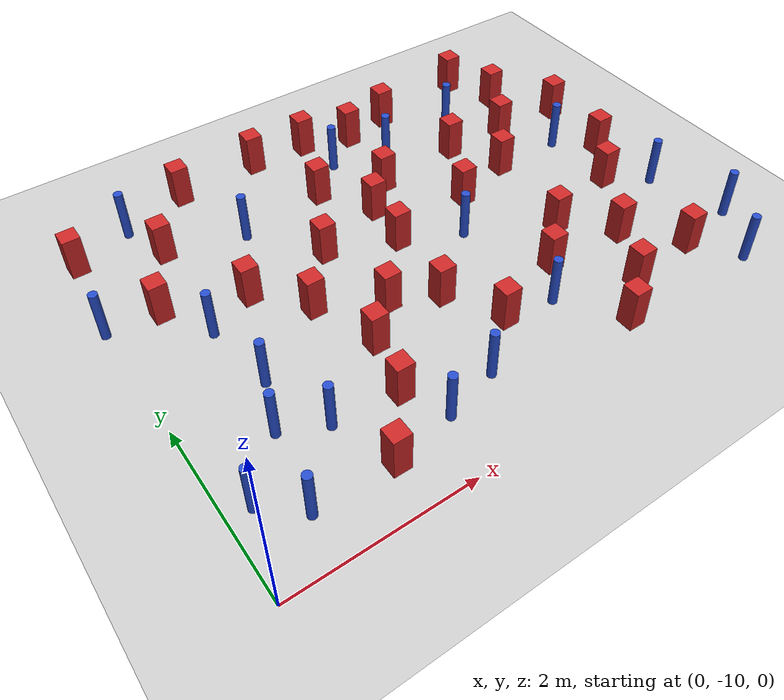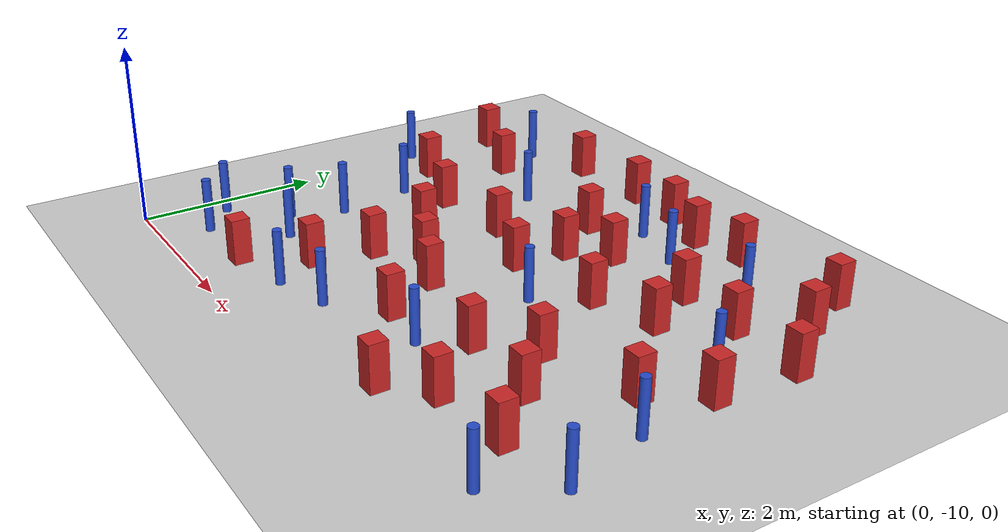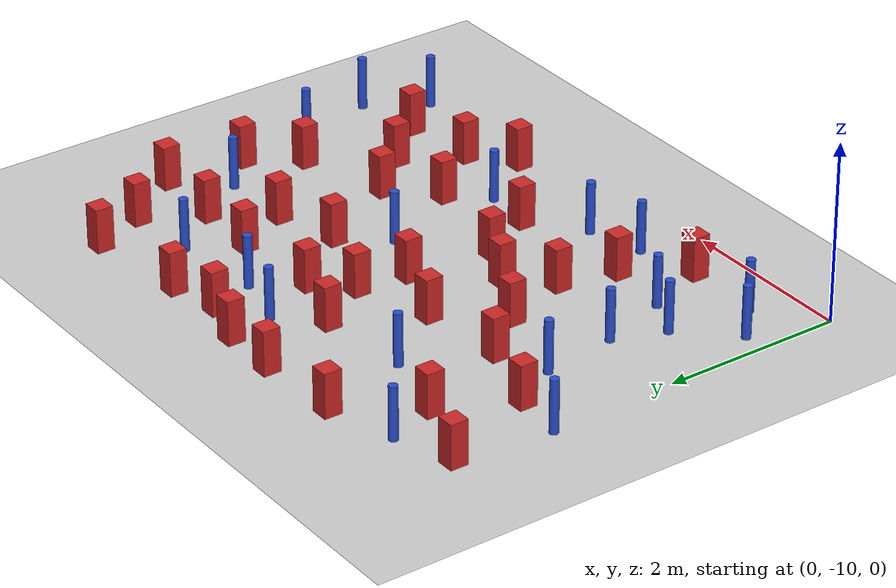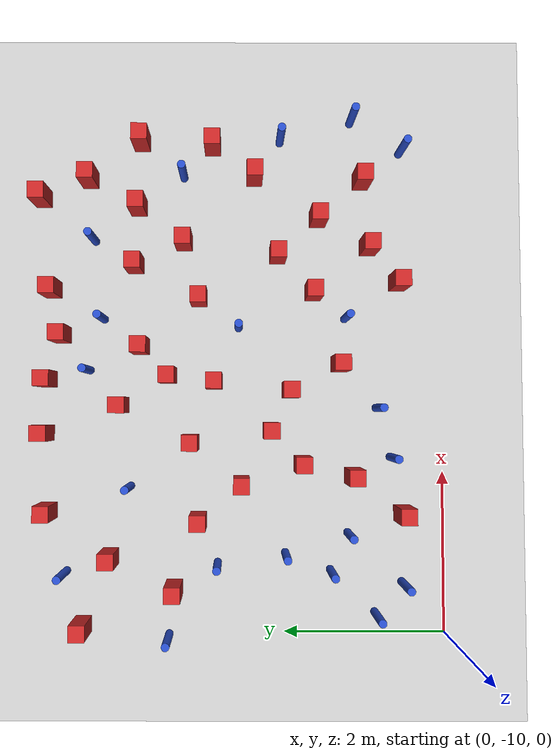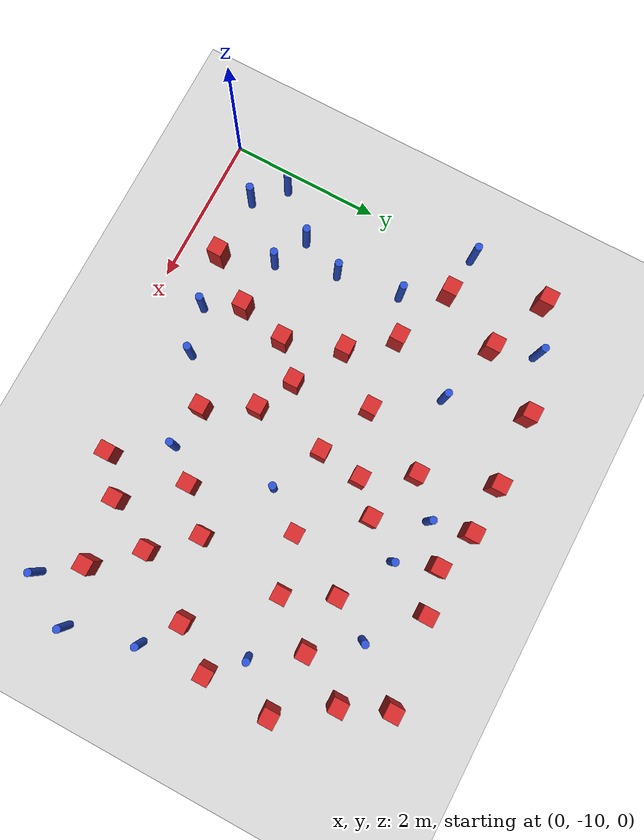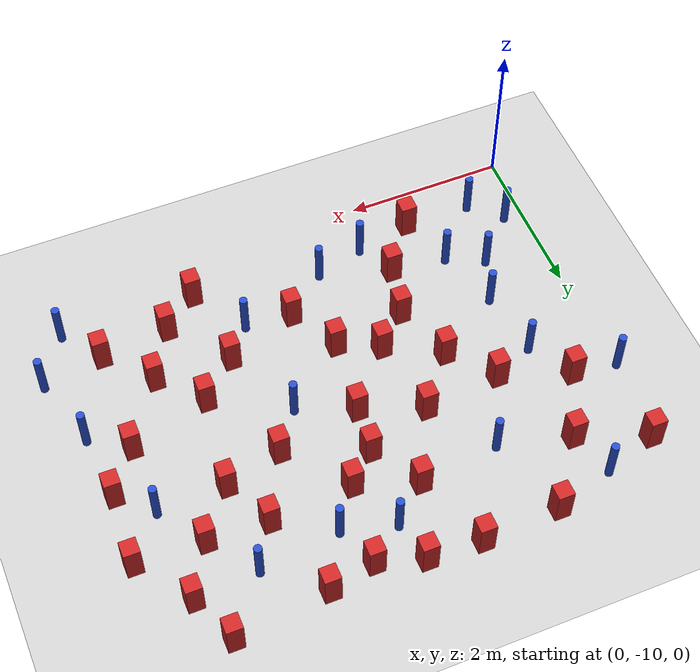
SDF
<sdf version="1.6">
 <world name="default">
  <model name="ground_plane">
   <static>1</static>
   <link name="link">
    <collision name="collision">
     <geometry><plane><normal>0 0 1</normal><size>100 100</size></plane></geometry>
     <surface><friction><ode><mu>100</mu><mu2>50</mu2></ode></friction></surface>
    </collision>
    <visual name="visual">
     <cast_shadows>0</cast_shadows>
     <geometry><plane><normal>0 0 1</normal><size>100 100</size></plane></geometry>
     <material>
      <ambient>1.0 1.0 1.0 1.0</ambient>
      <diffuse>0.8 0.8 0.8 1.0</diffuse>
      <specular>0.01 0.01 0.01 1.000000</specular>
     </material>
    </visual>
   </link>
  </model>
  <model name="square_post_obstacle4">
   <static>true</static>
   <pose>4.27000740854 -8.36256400304 -6.11067671241e-07 -5.50515727128e-06 -8.79689657224e-07 2.37013304536e-05</pose>
   <link name="link">
    <pose>0 0 0.25 0 -0 0</pose>
    <inertial>
     <mass>100</mass>
     <inertia>
      <ixx>0.166667</ixx>
      <ixy>0</ixy>
      <ixz>0</ixz>
      <iyy>0.166667</iyy>
      <iyz>0</iyz>
      <izz>0.166667</izz>
     </inertia>
    </inertial>
    <collision name="collision"><geometry><box><size>.2 .2 .5</size></box></geometry></collision>
    <visual name="visual">
     <geometry><box><size>.2 .2 .5</size></box></geometry>
     <material>
      <script><name>Gazebo/Red</name><uri>file://media/materials/scripts/gazebo.material</uri></script>
     </material>
    </visual>
   </link>
  </model>
  <model name="square_post_obstacle27">
   <static>true</static>
   <pose>4.91320004879 -6.72935652922 -6.11067671241e-07 -5.50515727128e-06 -8.79689657224e-07 2.37013304536e-05</pose>
   <link name="link">
    <pose>0 0 0.25 0 -0 0</pose>
    <inertial>
     <mass>100</mass>
     <inertia>
      <ixx>0.166667</ixx>
      <ixy>0</ixy>
      <ixz>0</ixz>
      <iyy>0.166667</iyy>
      <iyz>0</iyz>
      <izz>0.166667</izz>
     </inertia>
    </inertial>
    <collision name="collision"><geometry><box><size>.2 .2 .5</size></box></geometry></collision>
    <visual name="visual">
     <geometry><box><size>.2 .2 .5</size></box></geometry>
     <material>
      <script><name>Gazebo/Red</name><uri>file://media/materials/scripts/gazebo.material</uri></script>
     </material>
    </visual>
   </link>
  </model>
  <model name="pole_obstacle20">
   <static>true</static>
   <pose>6.22109271074 -7.94718420728 -9.47619616065e-06 5.49618799737e-07 2.36310414037e-07 -1.55090534814e-07</pose>
   <link name="link">
    <pose>0 0 0.3 0 -0 0</pose>
    <inertial>
     <mass>1</mass>
     <inertia><ixx>0.145833</ixx><ixy>0</ixy><ixz>0</ixz><iyy>0.145833</iyy><iyz>0</iyz><izz>0.125</izz></inertia>
    </inertial>
    <collision name="collision">
     <geometry><cylinder><radius>0.05</radius><length>.6</length></cylinder></geometry>
    </collision>
    <visual name="visual">
     <geometry><cylinder><radius>0.05</radius><length>.6</length></cylinder></geometry>
     <material>
      <script><name>Gazebo/Blue</name><uri>file://media/materials/scripts/gazebo.material</uri></script>
     </material>
    </visual>
   </link>
  </model>
  <model name="square_post_obstacle31">
   <static>true</static>
   <pose>3.16535665609 -5.01439034284 -6.11067671241e-07 -5.50515727128e-06 -8.79689657224e-07 2.37013304536e-05</pose>
   <link name="link">
    <pose>0 0 0.25 0 -0 0</pose>
    <inertial>
     <mass>100</mass>
     <inertia>
      <ixx>0.166667</ixx>
      <ixy>0</ixy>
      <ixz>0</ixz>
      <iyy>0.166667</iyy>
      <iyz>0</iyz>
      <izz>0.166667</izz>
     </inertia>
    </inertial>
    <collision name="collision"><geometry><box><size>.2 .2 .5</size></box></geometry></collision>
    <visual name="visual">
     <geometry><box><size>.2 .2 .5</size></box></geometry>
     <material>
      <script><name>Gazebo/Red</name><uri>file://media/materials/scripts/gazebo.material</uri></script>
     </material>
    </visual>
   </link>
  </model>
  <model name="pole_obstacle27">
   <static>true</static>
   <pose>0.25035474109 -9.12899410906 -9.47619616065e-06 5.49618799737e-07 2.36310414028e-07 -1.5509053482e-07</pose>
   <link name="link">
    <pose>0 0 0.3 0 -0 0</pose>
    <inertial>
     <mass>1</mass>
     <inertia><ixx>0.145833</ixx><ixy>0</ixy><ixz>0</ixz><iyy>0.145833</iyy><iyz>0</iyz><izz>0.125</izz></inertia>
    </inertial>
    <collision name="collision">
     <geometry><cylinder><radius>0.05</radius><length>.6</length></cylinder></geometry>
    </collision>
    <visual name="visual">
     <geometry><cylinder><radius>0.05</radius><length>.6</length></cylinder></geometry>
     <material>
      <script><name>Gazebo/Blue</name><uri>file://media/materials/scripts/gazebo.material</uri></script>
     </material>
    </visual>
   </link>
  </model>
  <model name="square_post_obstacle33">
   <static>true</static>
   <pose>1.84977558621 -7.45729103362 -6.11067671241e-07 -5.50515727128e-06 -8.79689657224e-07 2.37013304536e-05</pose>
   <link name="link">
    <pose>0 0 0.25 0 -0 0</pose>
    <inertial>
     <mass>100</mass>
     <inertia>
      <ixx>0.166667</ixx>
      <ixy>0</ixy>
      <ixz>0</ixz>
      <iyy>0.166667</iyy>
      <iyz>0</iyz>
      <izz>0.166667</izz>
     </inertia>
    </inertial>
    <collision name="collision"><geometry><box><size>.2 .2 .5</size></box></geometry></collision>
    <visual name="visual">
     <geometry><box><size>.2 .2 .5</size></box></geometry>
     <material>
      <script><name>Gazebo/Red</name><uri>file://media/materials/scripts/gazebo.material</uri></script>
     </material>
    </visual>
   </link>
  </model>
  <model name="square_post_obstacle34">
   <static>true</static>
   <pose>0.943805284244 -5.81739186659 -6.11067671241e-07 -5.50515727128e-06 -8.79689657224e-07 2.37013304536e-05</pose>
   <link name="link">
    <pose>0 0 0.25 0 -0 0</pose>
    <inertial>
     <mass>100</mass>
     <inertia>
      <ixx>0.166667</ixx>
      <ixy>0</ixy>
      <ixz>0</ixz>
      <iyy>0.166667</iyy>
      <iyz>0</iyz>
      <izz>0.166667</izz>
     </inertia>
    </inertial>
    <collision name="collision"><geometry><box><size>.2 .2 .5</size></box></geometry></collision>
    <visual name="visual">
     <geometry><box><size>.2 .2 .5</size></box></geometry>
     <material>
      <script><name>Gazebo/Red</name><uri>file://media/materials/scripts/gazebo.material</uri></script>
     </material>
    </visual>
   </link>
  </model>
  <model name="pole_obstacle37">
   <static>true</static>
   <pose>6.07519219155 -9.47970827635 -9.47619616065e-06 5.49618799737e-07 2.36310414065e-07 -1.55090534796e-07</pose>
   <link name="link">
    <pose>0 0 0.3 0 -0 0</pose>
    <inertial>
     <mass>1</mass>
     <inertia><ixx>0.145833</ixx><ixy>0</ixy><ixz>0</ixz><iyy>0.145833</iyy><iyz>0</iyz><izz>0.125</izz></inertia>
    </inertial>
    <collision name="collision">
     <geometry><cylinder><radius>0.05</radius><length>.6</length></cylinder></geometry>
    </collision>
    <visual name="visual">
     <geometry><cylinder><radius>0.05</radius><length>.6</length></cylinder></geometry>
     <material>
      <script><name>Gazebo/Blue</name><uri>file://media/materials/scripts/gazebo.material</uri></script>
     </material>
    </visual>
   </link>
  </model>
  <model name="square_post_obstacle38">
   <static>true</static>
   <pose>4.85000489357 -9.0650101034 -6.11067671241e-07 -5.50515727128e-06 -8.79689657224e-07 2.37013304536e-05</pose>
   <link name="link">
    <pose>0 0 0.25 0 -0 0</pose>
    <inertial>
     <mass>100</mass>
     <inertia>
      <ixx>0.166667</ixx>
      <ixy>0</ixy>
      <ixz>0</ixz>
      <iyy>0.166667</iyy>
      <iyz>0</iyz>
      <izz>0.166667</izz>
     </inertia>
    </inertial>
    <collision name="collision"><geometry><box><size>.2 .2 .5</size></box></geometry></collision>
    <visual name="visual">
     <geometry><box><size>.2 .2 .5</size></box></geometry>
     <material>
      <script><name>Gazebo/Red</name><uri>file://media/materials/scripts/gazebo.material</uri></script>
     </material>
    </visual>
   </link>
  </model>
  <model name="pole_obstacle42">
   <static>true</static>
   <pose>2.80531572379 -9.16412927902 -9.4761961606e-06 5.49618799729e-07 2.36310414e-07 -1.55090534824e-07</pose>
   <link name="link">
    <pose>0 0 0.3 0 -0 0</pose>
    <inertial>
     <mass>1</mass>
     <inertia><ixx>0.145833</ixx><ixy>0</ixy><ixz>0</ixz><iyy>0.145833</iyy><iyz>0</iyz><izz>0.125</izz></inertia>
    </inertial>
    <collision name="collision">
     <geometry><cylinder><radius>0.05</radius><length>.6</length></cylinder></geometry>
    </collision>
    <visual name="visual">
     <geometry><cylinder><radius>0.05</radius><length>.6</length></cylinder></geometry>
     <material>
      <script><name>Gazebo/Blue</name><uri>file://media/materials/scripts/gazebo.material</uri></script>
     </material>
    </visual>
   </link>
  </model>
  <model name="square_post_obstacle41">
   <static>true</static>
   <pose>3.35836096878 -8.69615812365 -6.11067671241e-07 -5.50515727128e-06 -8.79689657224e-07 2.37013304536e-05</pose>
   <link name="link">
    <pose>0 0 0.25 0 -0 0</pose>
    <inertial>
     <mass>100</mass>
     <inertia>
      <ixx>0.166667</ixx>
      <ixy>0</ixy>
      <ixz>0</ixz>
      <iyy>0.166667</iyy>
      <iyz>0</iyz>
      <izz>0.166667</izz>
     </inertia>
    </inertial>
    <collision name="collision"><geometry><box><size>.2 .2 .5</size></box></geometry></collision>
    <visual name="visual">
     <geometry><box><size>.2 .2 .5</size></box></geometry>
     <material>
      <script><name>Gazebo/Red</name><uri>file://media/materials/scripts/gazebo.material</uri></script>
     </material>
    </visual>
   </link>
  </model>
  <model name="square_post_obstacle45">
   <static>true</static>
   <pose>5.2152647757 -8.42399755399 -6.11067671241e-07 -5.50515727128e-06 -8.79689657224e-07 2.37013304536e-05</pose>
   <link name="link">
    <pose>0 0 0.25 0 -0 0</pose>
    <inertial>
     <mass>100</mass>
     <inertia>
      <ixx>0.166667</ixx>
      <ixy>0</ixy>
      <ixz>0</ixz>
      <iyy>0.166667</iyy>
      <iyz>0</iyz>
      <izz>0.166667</izz>
     </inertia>
    </inertial>
    <collision name="collision"><geometry><box><size>.2 .2 .5</size></box></geometry></collision>
    <visual name="visual">
     <geometry><box><size>.2 .2 .5</size></box></geometry>
     <material>
      <script><name>Gazebo/Red</name><uri>file://media/materials/scripts/gazebo.material</uri></script>
     </material>
    </visual>
   </link>
  </model>
  <model name="square_post_obstacle53">
   <static>true</static>
   <pose>1.51478234828 -5.03389385003 -6.11067671241e-07 -5.50515727128e-06 -8.79689657224e-07 2.37013304536e-05</pose>
   <link name="link">
    <pose>0 0 0.25 0 -0 0</pose>
    <inertial>
     <mass>100</mass>
     <inertia>
      <ixx>0.166667</ixx>
      <ixy>0</ixy>
      <ixz>0</ixz>
      <iyy>0.166667</iyy>
      <iyz>0</iyz>
      <izz>0.166667</izz>
     </inertia>
    </inertial>
    <collision name="collision"><geometry><box><size>.2 .2 .5</size></box></geometry></collision>
    <visual name="visual">
     <geometry><box><size>.2 .2 .5</size></box></geometry>
     <material>
      <script><name>Gazebo/Red</name><uri>file://media/materials/scripts/gazebo.material</uri></script>
     </material>
    </visual>
   </link>
  </model>
  <model name="square_post_obstacle54">
   <static>true</static>
   <pose>3.72689772404 -5.1895882642 -6.11067671241e-07 -5.50515727128e-06 -8.79689657224e-07 2.37013304536e-05</pose>
   <link name="link">
    <pose>0 0 0.25 0 -0 0</pose>
    <inertial>
     <mass>100</mass>
     <inertia>
      <ixx>0.166667</ixx>
      <ixy>0</ixy>
      <ixz>0</ixz>
      <iyy>0.166667</iyy>
      <iyz>0</iyz>
      <izz>0.166667</izz>
     </inertia>
    </inertial>
    <collision name="collision"><geometry><box><size>.2 .2 .5</size></box></geometry></collision>
    <visual name="visual">
     <geometry><box><size>.2 .2 .5</size></box></geometry>
     <material>
      <script><name>Gazebo/Red</name><uri>file://media/materials/scripts/gazebo.material</uri></script>
     </material>
    </visual>
   </link>
  </model>
  <model name="square_post_obstacle64">
   <static>true</static>
   <pose>5.47980102658 -4.9244858848 -6.11067671241e-07 -5.50515727128e-06 -8.79689657224e-07 2.37013304536e-05</pose>
   <link name="link">
    <pose>0 0 0.25 0 -0 0</pose>
    <inertial>
     <mass>100</mass>
     <inertia>
      <ixx>0.166667</ixx>
      <ixy>0</ixy>
      <ixz>0</ixz>
      <iyy>0.166667</iyy>
      <iyz>0</iyz>
      <izz>0.166667</izz>
     </inertia>
    </inertial>
    <collision name="collision"><geometry><box><size>.2 .2 .5</size></box></geometry></collision>
    <visual name="visual">
     <geometry><box><size>.2 .2 .5</size></box></geometry>
     <material>
      <script><name>Gazebo/Red</name><uri>file://media/materials/scripts/gazebo.material</uri></script>
     </material>
    </visual>
   </link>
  </model>
  <model name="square_post_obstacle66">
   <static>true</static>
   <pose>6.2099515593 -6.18497240239 -6.11067671241e-07 -5.50515727128e-06 -8.79689657224e-07 2.37013304536e-05</pose>
   <link name="link">
    <pose>0 0 0.25 0 -0 0</pose>
    <inertial>
     <mass>100</mass>
     <inertia>
      <ixx>0.166667</ixx>
      <ixy>0</ixy>
      <ixz>0</ixz>
      <iyy>0.166667</iyy>
      <iyz>0</iyz>
      <izz>0.166667</izz>
     </inertia>
    </inertial>
    <collision name="collision"><geometry><box><size>.2 .2 .5</size></box></geometry></collision>
    <visual name="visual">
     <geometry><box><size>.2 .2 .5</size></box></geometry>
     <material>
      <script><name>Gazebo/Red</name><uri>file://media/materials/scripts/gazebo.material</uri></script>
     </material>
    </visual>
   </link>
  </model>
  <model name="square_post_obstacle76">
   <static>true</static>
   <pose>3.13929766822 -7.11470816237 -6.11067671241e-07 -5.50515727128e-06 -8.79689657224e-07 2.37013304536e-05</pose>
   <link name="link">
    <pose>0 0 0.25 0 -0 0</pose>
    <inertial>
     <mass>100</mass>
     <inertia>
      <ixx>0.166667</ixx>
      <ixy>0</ixy>
      <ixz>0</ixz>
      <iyy>0.166667</iyy>
      <iyz>0</iyz>
      <izz>0.166667</izz>
     </inertia>
    </inertial>
    <collision name="collision"><geometry><box><size>.2 .2 .5</size></box></geometry></collision>
    <visual name="visual">
     <geometry><box><size>.2 .2 .5</size></box></geometry>
     <material>
      <script><name>Gazebo/Red</name><uri>file://media/materials/scripts/gazebo.material</uri></script>
     </material>
    </visual>
   </link>
  </model>
  <model name="pole_obstacle77">
   <static>true</static>
   <pose>3.81965279571 -7.42173797275 -9.47619616065e-06 5.49618799738e-07 2.3631041406e-07 -1.55090534801e-07</pose>
   <link name="link">
    <pose>0 0 0.3 0 -0 0</pose>
    <inertial>
     <mass>1</mass>
     <inertia><ixx>0.145833</ixx><ixy>0</ixy><ixz>0</ixz><iyy>0.145833</iyy><iyz>0</iyz><izz>0.125</izz></inertia>
    </inertial>
    <collision name="collision">
     <geometry><cylinder><radius>0.05</radius><length>.6</length></cylinder></geometry>
    </collision>
    <visual name="visual">
     <geometry><cylinder><radius>0.05</radius><length>.6</length></cylinder></geometry>
     <material>
      <script><name>Gazebo/Blue</name><uri>file://media/materials/scripts/gazebo.material</uri></script>
     </material>
    </visual>
   </link>
  </model>
  <model name="pole_obstacle81">
   <static>true</static>
   <pose>0.775164199899 -8.57461643668 -9.47619616065e-06 5.49618799737e-07 2.36310414038e-07 -1.55090534813e-07</pose>
   <link name="link">
    <pose>0 0 0.3 0 -0 0</pose>
    <inertial>
     <mass>1</mass>
     <inertia><ixx>0.145833</ixx><ixy>0</ixy><ixz>0</ixz><iyy>0.145833</iyy><iyz>0</iyz><izz>0.125</izz></inertia>
    </inertial>
    <collision name="collision">
     <geometry><cylinder><radius>0.05</radius><length>.6</length></cylinder></geometry>
    </collision>
    <visual name="visual">
     <geometry><cylinder><radius>0.05</radius><length>.6</length></cylinder></geometry>
     <material>
      <script><name>Gazebo/Blue</name><uri>file://media/materials/scripts/gazebo.material</uri></script>
     </material>
    </visual>
   </link>
  </model>
  <model name="pole_obstacle91">
   <static>true</static>
   <pose>-0.0262227456353 -6.55758067548 -9.47619616065e-06 5.49618799737e-07 2.36310414067e-07 -1.55090534797e-07</pose>
   <link name="link">
    <pose>0 0 0.3 0 -0 0</pose>
    <inertial>
     <mass>1</mass>
     <inertia><ixx>0.145833</ixx><ixy>0</ixy><ixz>0</ixz><iyy>0.145833</iyy><iyz>0</iyz><izz>0.125</izz></inertia>
    </inertial>
    <collision name="collision">
     <geometry><cylinder><radius>0.05</radius><length>.6</length></cylinder></geometry>
    </collision>
    <visual name="visual">
     <geometry><cylinder><radius>0.05</radius><length>.6</length></cylinder></geometry>
     <material>
      <script><name>Gazebo/Blue</name><uri>file://media/materials/scripts/gazebo.material</uri></script>
     </material>
    </visual>
   </link>
  </model>
  <model name="square_post_obstacle83">
   <static>true</static>
   <pose>1.48588975882 -9.47851932892 -6.11067671241e-07 -5.50515727128e-06 -8.79689657224e-07 2.37013304536e-05</pose>
   <link name="link">
    <pose>0 0 0.25 0 -0 0</pose>
    <inertial>
     <mass>100</mass>
     <inertia>
      <ixx>0.166667</ixx>
      <ixy>0</ixy>
      <ixz>0</ixz>
      <iyy>0.166667</iyy>
      <iyz>0</iyz>
      <izz>0.166667</izz>
     </inertia>
    </inertial>
    <collision name="collision"><geometry><box><size>.2 .2 .5</size></box></geometry></collision>
    <visual name="visual">
     <geometry><box><size>.2 .2 .5</size></box></geometry>
     <material>
      <script><name>Gazebo/Red</name><uri>file://media/materials/scripts/gazebo.material</uri></script>
     </material>
    </visual>
   </link>
  </model>
  <model name="pole_obstacle95">
   <static>true</static>
   <pose>1.23606740199 -8.79605750148 -9.47619616065e-06 5.49618799737e-07 2.36310414046e-07 -1.55090534809e-07</pose>
   <link name="link">
    <pose>0 0 0.3 0 -0 0</pose>
    <inertial>
     <mass>1</mass>
     <inertia><ixx>0.145833</ixx><ixy>0</ixy><ixz>0</ixz><iyy>0.145833</iyy><iyz>0</iyz><izz>0.125</izz></inertia>
    </inertial>
    <collision name="collision">
     <geometry><cylinder><radius>0.05</radius><length>.6</length></cylinder></geometry>
    </collision>
    <visual name="visual">
     <geometry><cylinder><radius>0.05</radius><length>.6</length></cylinder></geometry>
     <material>
      <script><name>Gazebo/Blue</name><uri>file://media/materials/scripts/gazebo.material</uri></script>
     </material>
    </visual>
   </link>
  </model>
  <model name="square_post_obstacle84">
   <static>true</static>
   <pose>2.10705294698 -8.21892633521 -6.11067671241e-07 -5.50515727128e-06 -8.79689657224e-07 2.37013304536e-05</pose>
   <link name="link">
    <pose>0 0 0.25 0 -0 0</pose>
    <inertial>
     <mass>100</mass>
     <inertia>
      <ixx>0.166667</ixx>
      <ixy>0</ixy>
      <ixz>0</ixz>
      <iyy>0.166667</iyy>
      <iyz>0</iyz>
      <izz>0.166667</izz>
     </inertia>
    </inertial>
    <collision name="collision"><geometry><box><size>.2 .2 .5</size></box></geometry></collision>
    <visual name="visual">
     <geometry><box><size>.2 .2 .5</size></box></geometry>
     <material>
      <script><name>Gazebo/Red</name><uri>file://media/materials/scripts/gazebo.material</uri></script>
     </material>
    </visual>
   </link>
  </model>
  <model name="square_post_obstacle89">
   <static>true</static>
   <pose>2.37349055397 -6.82256334408 -6.11067671241e-07 -5.50515727128e-06 -8.79689657224e-07 2.37013304536e-05</pose>
   <link name="link">
    <pose>0 0 0.25 0 -0 0</pose>
    <inertial>
     <mass>100</mass>
     <inertia>
      <ixx>0.166667</ixx>
      <ixy>0</ixy>
      <ixz>0</ixz>
      <iyy>0.166667</iyy>
      <iyz>0</iyz>
      <izz>0.166667</izz>
     </inertia>
    </inertial>
    <collision name="collision"><geometry><box><size>.2 .2 .5</size></box></geometry></collision>
    <visual name="visual">
     <geometry><box><size>.2 .2 .5</size></box></geometry>
     <material>
      <script><name>Gazebo/Red</name><uri>file://media/materials/scripts/gazebo.material</uri></script>
     </material>
    </visual>
   </link>
  </model>
  <model name="pole_obstacle110">
   <static>true</static>
   <pose>0.62400176185 -9.47337553034 -9.47619616065e-06 5.49618799737e-07 2.36310414038e-07 -1.55090534813e-07</pose>
   <link name="link">
    <pose>0 0 0.3 0 -0 0</pose>
    <inertial>
     <mass>1</mass>
     <inertia><ixx>0.145833</ixx><ixy>0</ixy><ixz>0</ixz><iyy>0.145833</iyy><iyz>0</iyz><izz>0.125</izz></inertia>
    </inertial>
    <collision name="collision">
     <geometry><cylinder><radius>0.05</radius><length>.6</length></cylinder></geometry>
    </collision>
    <visual name="visual">
     <geometry><cylinder><radius>0.05</radius><length>.6</length></cylinder></geometry>
     <material>
      <script><name>Gazebo/Blue</name><uri>file://media/materials/scripts/gazebo.material</uri></script>
     </material>
    </visual>
   </link>
  </model>
  <model name="pole_obstacle111">
   <static>true</static>
   <pose>2.18609226781 -9.33753441363 -9.4761961606e-06 5.49618799729e-07 2.36310414e-07 -1.55090534824e-07</pose>
   <link name="link">
    <pose>0 0 0.3 0 -0 0</pose>
    <inertial>
     <mass>1</mass>
     <inertia><ixx>0.145833</ixx><ixy>0</ixy><ixz>0</ixz><iyy>0.145833</iyy><iyz>0</iyz><izz>0.125</izz></inertia>
    </inertial>
    <collision name="collision">
     <geometry><cylinder><radius>0.05</radius><length>.6</length></cylinder></geometry>
    </collision>
    <visual name="visual">
     <geometry><cylinder><radius>0.05</radius><length>.6</length></cylinder></geometry>
     <material>
      <script><name>Gazebo/Blue</name><uri>file://media/materials/scripts/gazebo.material</uri></script>
     </material>
    </visual>
   </link>
  </model>
  <model name="pole_obstacle112">
   <static>true</static>
   <pose>5.76023879678 -6.72163351184 -9.47619616065e-06 5.49618799737e-07 2.36310414037e-07 -1.55090534814e-07</pose>
   <link name="link">
    <pose>0 0 0.3 0 -0 0</pose>
    <inertial>
     <mass>1</mass>
     <inertia><ixx>0.145833</ixx><ixy>0</ixy><ixz>0</ixz><iyy>0.145833</iyy><iyz>0</iyz><izz>0.125</izz></inertia>
    </inertial>
    <collision name="collision">
     <geometry><cylinder><radius>0.05</radius><length>.6</length></cylinder></geometry>
    </collision>
    <visual name="visual">
     <geometry><cylinder><radius>0.05</radius><length>.6</length></cylinder></geometry>
     <material>
      <script><name>Gazebo/Blue</name><uri>file://media/materials/scripts/gazebo.material</uri></script>
     </material>
    </visual>
   </link>
  </model>
  <model name="square_post_obstacle99">
   <static>true</static>
   <pose>3.02630135185 -8.07060837532 -6.11067671241e-07 -5.50515727128e-06 -8.79689657224e-07 2.37013304536e-05</pose>
   <link name="link">
    <pose>0 0 0.25 0 -0 0</pose>
    <inertial>
     <mass>100</mass>
     <inertia>
      <ixx>0.166667</ixx>
      <ixy>0</ixy>
      <ixz>0</ixz>
      <iyy>0.166667</iyy>
      <iyz>0</iyz>
      <izz>0.166667</izz>
     </inertia>
    </inertial>
    <collision name="collision"><geometry><box><size>.2 .2 .5</size></box></geometry></collision>
    <visual name="visual">
     <geometry><box><size>.2 .2 .5</size></box></geometry>
     <material>
      <script><name>Gazebo/Red</name><uri>file://media/materials/scripts/gazebo.material</uri></script>
     </material>
    </visual>
   </link>
  </model>
  <model name="square_post_obstacle103">
   <static>true</static>
   <pose>4.30325117876 -5.06579845227 -6.11067671241e-07 -5.50515727128e-06 -8.79689657224e-07 2.37013304536e-05</pose>
   <link name="link">
    <pose>0 0 0.25 0 -0 0</pose>
    <inertial>
     <mass>100</mass>
     <inertia>
      <ixx>0.166667</ixx>
      <ixy>0</ixy>
      <ixz>0</ixz>
      <iyy>0.166667</iyy>
      <iyz>0</iyz>
      <izz>0.166667</izz>
     </inertia>
    </inertial>
    <collision name="collision"><geometry><box><size>.2 .2 .5</size></box></geometry></collision>
    <visual name="visual">
     <geometry><box><size>.2 .2 .5</size></box></geometry>
     <material>
      <script><name>Gazebo/Red</name><uri>file://media/materials/scripts/gazebo.material</uri></script>
     </material>
    </visual>
   </link>
  </model>
  <model name="square_post_obstacle106">
   <static>true</static>
   <pose>3.57953802652 -6.18852947052 -6.11067671241e-07 -5.50515727128e-06 -8.79689657224e-07 2.37013304536e-05</pose>
   <link name="link">
    <pose>0 0 0.25 0 -0 0</pose>
    <inertial>
     <mass>100</mass>
     <inertia>
      <ixx>0.166667</ixx>
      <ixy>0</ixy>
      <ixz>0</ixz>
      <iyy>0.166667</iyy>
      <iyz>0</iyz>
      <izz>0.166667</izz>
     </inertia>
    </inertial>
    <collision name="collision"><geometry><box><size>.2 .2 .5</size></box></geometry></collision>
    <visual name="visual">
     <geometry><box><size>.2 .2 .5</size></box></geometry>
     <material>
      <script><name>Gazebo/Red</name><uri>file://media/materials/scripts/gazebo.material</uri></script>
     </material>
    </visual>
   </link>
  </model>
  <model name="pole_obstacle124">
   <static>true</static>
   <pose>0.755564824645 -5.26332262702 -9.47619616065e-06 5.49618799737e-07 2.36310414065e-07 -1.55090534796e-07</pose>
   <link name="link">
    <pose>0 0 0.3 0 -0 0</pose>
    <inertial>
     <mass>1</mass>
     <inertia><ixx>0.145833</ixx><ixy>0</ixy><ixz>0</ixz><iyy>0.145833</iyy><iyz>0</iyz><izz>0.125</izz></inertia>
    </inertial>
    <collision name="collision">
     <geometry><cylinder><radius>0.05</radius><length>.6</length></cylinder></geometry>
    </collision>
    <visual name="visual">
     <geometry><cylinder><radius>0.05</radius><length>.6</length></cylinder></geometry>
     <material>
      <script><name>Gazebo/Blue</name><uri>file://media/materials/scripts/gazebo.material</uri></script>
     </material>
    </visual>
   </link>
  </model>
  <model name="pole_obstacle128">
   <static>true</static>
   <pose>4.93428116564 -5.59172526571 -9.47619616065e-06 5.49618799737e-07 2.36310414037e-07 -1.55090534814e-07</pose>
   <link name="link">
    <pose>0 0 0.3 0 -0 0</pose>
    <inertial>
     <mass>1</mass>
     <inertia><ixx>0.145833</ixx><ixy>0</ixy><ixz>0</ixz><iyy>0.145833</iyy><iyz>0</iyz><izz>0.125</izz></inertia>
    </inertial>
    <collision name="collision">
     <geometry><cylinder><radius>0.05</radius><length>.6</length></cylinder></geometry>
    </collision>
    <visual name="visual">
     <geometry><cylinder><radius>0.05</radius><length>.6</length></cylinder></geometry>
     <material>
      <script><name>Gazebo/Blue</name><uri>file://media/materials/scripts/gazebo.material</uri></script>
     </material>
    </visual>
   </link>
  </model>
  <model name="pole_obstacle137">
   <static>true</static>
   <pose>3.93063954701 -5.71215442817 -9.47619616065e-06 5.49618799738e-07 2.3631041406e-07 -1.55090534801e-07</pose>
   <link name="link">
    <pose>0 0 0.3 0 -0 0</pose>
    <inertial>
     <mass>1</mass>
     <inertia><ixx>0.145833</ixx><ixy>0</ixy><ixz>0</ixz><iyy>0.145833</iyy><iyz>0</iyz><izz>0.125</izz></inertia>
    </inertial>
    <collision name="collision">
     <geometry><cylinder><radius>0.05</radius><length>.6</length></cylinder></geometry>
    </collision>
    <visual name="visual">
     <geometry><cylinder><radius>0.05</radius><length>.6</length></cylinder></geometry>
     <material>
      <script><name>Gazebo/Blue</name><uri>file://media/materials/scripts/gazebo.material</uri></script>
     </material>
    </visual>
   </link>
  </model>
  <model name="square_post_obstacle130">
   <static>true</static>
   <pose>2.52095262187 -7.8295954439 -6.11067671241e-07 -5.50515727128e-06 -8.79689657224e-07 2.37013304536e-05</pose>
   <link name="link">
    <pose>0 0 0.25 0 -0 0</pose>
    <inertial>
     <mass>100</mass>
     <inertia>
      <ixx>0.166667</ixx>
      <ixy>0</ixy>
      <ixz>0</ixz>
      <iyy>0.166667</iyy>
      <iyz>0</iyz>
      <izz>0.166667</izz>
     </inertia>
    </inertial>
    <collision name="collision"><geometry><box><size>.2 .2 .5</size></box></geometry></collision>
    <visual name="visual">
     <geometry><box><size>.2 .2 .5</size></box></geometry>
     <material>
      <script><name>Gazebo/Red</name><uri>file://media/materials/scripts/gazebo.material</uri></script>
     </material>
    </visual>
   </link>
  </model>
  <model name="pole_obstacle146">
   <static>true</static>
   <pose>1.81649140983 -6.06243674188 -9.47619616065e-06 5.49618799737e-07 2.36310414061e-07 -1.550905348e-07</pose>
   <link name="link">
    <pose>0 0 0.3 0 -0 0</pose>
    <inertial>
     <mass>1</mass>
     <inertia><ixx>0.145833</ixx><ixy>0</ixy><ixz>0</ixz><iyy>0.145833</iyy><iyz>0</iyz><izz>0.125</izz></inertia>
    </inertial>
    <collision name="collision">
     <geometry><cylinder><radius>0.05</radius><length>.6</length></cylinder></geometry>
    </collision>
    <visual name="visual">
     <geometry><cylinder><radius>0.05</radius><length>.6</length></cylinder></geometry>
     <material>
      <script><name>Gazebo/Blue</name><uri>file://media/materials/scripts/gazebo.material</uri></script>
     </material>
    </visual>
   </link>
  </model>
  <model name="square_post_obstacle138">
   <static>true</static>
   <pose>0.096073461063 -5.48213786451 -6.11067671241e-07 -5.50515727128e-06 -8.79689657224e-07 2.37013304536e-05</pose>
   <link name="link">
    <pose>0 0 0.25 0 -0 0</pose>
    <inertial>
     <mass>100</mass>
     <inertia>
      <ixx>0.166667</ixx>
      <ixy>0</ixy>
      <ixz>0</ixz>
      <iyy>0.166667</iyy>
      <iyz>0</iyz>
      <izz>0.166667</izz>
     </inertia>
    </inertial>
    <collision name="collision"><geometry><box><size>.2 .2 .5</size></box></geometry></collision>
    <visual name="visual">
     <geometry><box><size>.2 .2 .5</size></box></geometry>
     <material>
      <script><name>Gazebo/Red</name><uri>file://media/materials/scripts/gazebo.material</uri></script>
     </material>
    </visual>
   </link>
  </model>
  <model name="pole_obstacle153">
   <static>true</static>
   <pose>3.9384719539 -8.77003057585 -9.4761961606e-06 5.49618799729e-07 2.36310414e-07 -1.55090534824e-07</pose>
   <link name="link">
    <pose>0 0 0.3 0 -0 0</pose>
    <inertial>
     <mass>1</mass>
     <inertia><ixx>0.145833</ixx><ixy>0</ixy><ixz>0</ixz><iyy>0.145833</iyy><iyz>0</iyz><izz>0.125</izz></inertia>
    </inertial>
    <collision name="collision">
     <geometry><cylinder><radius>0.05</radius><length>.6</length></cylinder></geometry>
    </collision>
    <visual name="visual">
     <geometry><cylinder><radius>0.05</radius><length>.6</length></cylinder></geometry>
     <material>
      <script><name>Gazebo/Blue</name><uri>file://media/materials/scripts/gazebo.material</uri></script>
     </material>
    </visual>
   </link>
  </model>
  <model name="square_post_obstacle143">
   <static>true</static>
   <pose>5.70785365033 -8.97778411919 -6.11067671241e-07 -5.50515727128e-06 -8.79689657224e-07 2.37013304536e-05</pose>
   <link name="link">
    <pose>0 0 0.25 0 -0 0</pose>
    <inertial>
     <mass>100</mass>
     <inertia>
      <ixx>0.166667</ixx>
      <ixy>0</ixy>
      <ixz>0</ixz>
      <iyy>0.166667</iyy>
      <iyz>0</iyz>
      <izz>0.166667</izz>
     </inertia>
    </inertial>
    <collision name="collision"><geometry><box><size>.2 .2 .5</size></box></geometry></collision>
    <visual name="visual">
     <geometry><box><size>.2 .2 .5</size></box></geometry>
     <material>
      <script><name>Gazebo/Red</name><uri>file://media/materials/scripts/gazebo.material</uri></script>
     </material>
    </visual>
   </link>
  </model>
  <model name="pole_obstacle155">
   <static>true</static>
   <pose>0.863532499513 -7.16221525429 -9.47619616065e-06 5.49618799737e-07 2.36310414065e-07 -1.55090534796e-07</pose>
   <link name="link">
    <pose>0 0 0.3 0 -0 0</pose>
    <inertial>
     <mass>1</mass>
     <inertia><ixx>0.145833</ixx><ixy>0</ixy><ixz>0</ixz><iyy>0.145833</iyy><iyz>0</iyz><izz>0.125</izz></inertia>
    </inertial>
    <collision name="collision">
     <geometry><cylinder><radius>0.05</radius><length>.6</length></cylinder></geometry>
    </collision>
    <visual name="visual">
     <geometry><cylinder><radius>0.05</radius><length>.6</length></cylinder></geometry>
     <material>
      <script><name>Gazebo/Blue</name><uri>file://media/materials/scripts/gazebo.material</uri></script>
     </material>
    </visual>
   </link>
  </model>
  <model name="pole_obstacle167">
   <static>true</static>
   <pose>0.985189160486 -8.00978428303 -9.47619616065e-06 5.49618799737e-07 2.3631041402e-07 -1.55090534826e-07</pose>
   <link name="link">
    <pose>0 0 0.3 0 -0 0</pose>
    <inertial>
     <mass>1</mass>
     <inertia><ixx>0.145833</ixx><ixy>0</ixy><ixz>0</ixz><iyy>0.145833</iyy><iyz>0</iyz><izz>0.125</izz></inertia>
    </inertial>
    <collision name="collision">
     <geometry><cylinder><radius>0.05</radius><length>.6</length></cylinder></geometry>
    </collision>
    <visual name="visual">
     <geometry><cylinder><radius>0.05</radius><length>.6</length></cylinder></geometry>
     <material>
      <script><name>Gazebo/Blue</name><uri>file://media/materials/scripts/gazebo.material</uri></script>
     </material>
    </visual>
   </link>
  </model>
  <model name="square_post_obstacle161">
   <static>true</static>
   <pose>3.20931111447 -6.53737873554 -6.11067671241e-07 -5.50515727128e-06 -8.79689657224e-07 2.37013304536e-05</pose>
   <link name="link">
    <pose>0 0 0.25 0 -0 0</pose>
    <inertial>
     <mass>100</mass>
     <inertia>
      <ixx>0.166667</ixx>
      <ixy>0</ixy>
      <ixz>0</ixz>
      <iyy>0.166667</iyy>
      <iyz>0</iyz>
      <izz>0.166667</izz>
     </inertia>
    </inertial>
    <collision name="collision"><geometry><box><size>.2 .2 .5</size></box></geometry></collision>
    <visual name="visual">
     <geometry><box><size>.2 .2 .5</size></box></geometry>
     <material>
      <script><name>Gazebo/Red</name><uri>file://media/materials/scripts/gazebo.material</uri></script>
     </material>
    </visual>
   </link>
  </model>
  <model name="pole_obstacle172">
   <static>true</static>
   <pose>3.27950427928 -5.53719683224 -9.47619616065e-06 5.49618799738e-07 2.3631041406e-07 -1.55090534801e-07</pose>
   <link name="link">
    <pose>0 0 0.3 0 -0 0</pose>
    <inertial>
     <mass>1</mass>
     <inertia><ixx>0.145833</ixx><ixy>0</ixy><ixz>0</ixz><iyy>0.145833</iyy><iyz>0</iyz><izz>0.125</izz></inertia>
    </inertial>
    <collision name="collision">
     <geometry><cylinder><radius>0.05</radius><length>.6</length></cylinder></geometry>
    </collision>
    <visual name="visual">
     <geometry><cylinder><radius>0.05</radius><length>.6</length></cylinder></geometry>
     <material>
      <script><name>Gazebo/Blue</name><uri>file://media/materials/scripts/gazebo.material</uri></script>
     </material>
    </visual>
   </link>
  </model>
  <model name="square_post_obstacle163">
   <static>true</static>
   <pose>5.72743974214 -5.52276978583 -6.11067671241e-07 -5.50515727128e-06 -8.79689657224e-07 2.37013304536e-05</pose>
   <link name="link">
    <pose>0 0 0.25 0 -0 0</pose>
    <inertial>
     <mass>100</mass>
     <inertia>
      <ixx>0.166667</ixx>
      <ixy>0</ixy>
      <ixz>0</ixz>
      <iyy>0.166667</iyy>
      <iyz>0</iyz>
      <izz>0.166667</izz>
     </inertia>
    </inertial>
    <collision name="collision"><geometry><box><size>.2 .2 .5</size></box></geometry></collision>
    <visual name="visual">
     <geometry><box><size>.2 .2 .5</size></box></geometry>
     <material>
      <script><name>Gazebo/Red</name><uri>file://media/materials/scripts/gazebo.material</uri></script>
     </material>
    </visual>
   </link>
  </model>
  <model name="square_post_obstacle181">
   <static>true</static>
   <pose>1.40189127651 -6.92217086385 -6.11067671241e-07 -5.50515727128e-06 -8.79689657224e-07 2.37013304536e-05</pose>
   <link name="link">
    <pose>0 0 0.25 0 -0 0</pose>
    <inertial>
     <mass>100</mass>
     <inertia>
      <ixx>0.166667</ixx>
      <ixy>0</ixy>
      <ixz>0</ixz>
      <iyy>0.166667</iyy>
      <iyz>0</iyz>
      <izz>0.166667</izz>
     </inertia>
    </inertial>
    <collision name="collision"><geometry><box><size>.2 .2 .5</size></box></geometry></collision>
    <visual name="visual">
     <geometry><box><size>.2 .2 .5</size></box></geometry>
     <material>
      <script><name>Gazebo/Red</name><uri>file://media/materials/scripts/gazebo.material</uri></script>
     </material>
    </visual>
   </link>
  </model>
  <model name="square_post_obstacle184">
   <static>true</static>
   <pose>2.836513814 -5.93301443114 -6.11067671241e-07 -5.50515727128e-06 -8.79689657224e-07 2.37013304536e-05</pose>
   <link name="link">
    <pose>0 0 0.25 0 -0 0</pose>
    <inertial>
     <mass>100</mass>
     <inertia>
      <ixx>0.166667</ixx>
      <ixy>0</ixy>
      <ixz>0</ixz>
      <iyy>0.166667</iyy>
      <iyz>0</iyz>
      <izz>0.166667</izz>
     </inertia>
    </inertial>
    <collision name="collision"><geometry><box><size>.2 .2 .5</size></box></geometry></collision>
    <visual name="visual">
     <geometry><box><size>.2 .2 .5</size></box></geometry>
     <material>
      <script><name>Gazebo/Red</name><uri>file://media/materials/scripts/gazebo.material</uri></script>
     </material>
    </visual>
   </link>
  </model>
  <model name="square_post_obstacle190">
   <static>true</static>
   <pose>2.4896035066 -4.98594566215 -6.11067671241e-07 -5.50515727128e-06 -8.79689657224e-07 2.37013304536e-05</pose>
   <link name="link">
    <pose>0 0 0.25 0 -0 0</pose>
    <inertial>
     <mass>100</mass>
     <inertia>
      <ixx>0.166667</ixx>
      <ixy>0</ixy>
      <ixz>0</ixz>
      <iyy>0.166667</iyy>
      <iyz>0</iyz>
      <izz>0.166667</izz>
     </inertia>
    </inertial>
    <collision name="collision"><geometry><box><size>.2 .2 .5</size></box></geometry></collision>
    <visual name="visual">
     <geometry><box><size>.2 .2 .5</size></box></geometry>
     <material>
      <script><name>Gazebo/Red</name><uri>file://media/materials/scripts/gazebo.material</uri></script>
     </material>
    </visual>
   </link>
  </model>
  <model name="square_post_obstacle192">
   <static>true</static>
   <pose>5.36734425003 -6.14685688625 -6.11067671241e-07 -5.50515727128e-06 -8.79689657224e-07 2.37013304536e-05</pose>
   <link name="link">
    <pose>0 0 0.25 0 -0 0</pose>
    <inertial>
     <mass>100</mass>
     <inertia>
      <ixx>0.166667</ixx>
      <ixy>0</ixy>
      <ixz>0</ixz>
      <iyy>0.166667</iyy>
      <iyz>0</iyz>
      <izz>0.166667</izz>
     </inertia>
    </inertial>
    <collision name="collision"><geometry><box><size>.2 .2 .5</size></box></geometry></collision>
    <visual name="visual">
     <geometry><box><size>.2 .2 .5</size></box></geometry>
     <material>
      <script><name>Gazebo/Red</name><uri>file://media/materials/scripts/gazebo.material</uri></script>
     </material>
    </visual>
   </link>
  </model>
  <model name="pole_obstacle197">
   <static>true</static>
   <pose>6.47311654585 -8.84875756128 -9.47619616065e-06 5.49618799737e-07 2.36310414065e-07 -1.55090534796e-07</pose>
   <link name="link">
    <pose>0 0 0.3 0 -0 0</pose>
    <inertial>
     <mass>1</mass>
     <inertia><ixx>0.145833</ixx><ixy>0</ixy><ixz>0</ixz><iyy>0.145833</iyy><iyz>0</iyz><izz>0.125</izz></inertia>
    </inertial>
    <collision name="collision">
     <geometry><cylinder><radius>0.05</radius><length>.6</length></cylinder></geometry>
    </collision>
    <visual name="visual">
     <geometry><cylinder><radius>0.05</radius><length>.6</length></cylinder></geometry>
     <material>
      <script><name>Gazebo/Blue</name><uri>file://media/materials/scripts/gazebo.material</uri></script>
     </material>
    </visual>
   </link>
  </model>
  <model name="square_post_obstacle211">
   <static>true</static>
   <pose>5.75815283512 -7.61914347148 -6.11067671241e-07 -5.50515727128e-06 -8.79689657224e-07 2.37013304536e-05</pose>
   <link name="link">
    <pose>0 0 0.25 0 -0 0</pose>
    <inertial>
     <mass>100</mass>
     <inertia>
      <ixx>0.166667</ixx>
      <ixy>0</ixy>
      <ixz>0</ixz>
      <iyy>0.166667</iyy>
      <iyz>0</iyz>
      <izz>0.166667</izz>
     </inertia>
    </inertial>
    <collision name="collision"><geometry><box><size>.2 .2 .5</size></box></geometry></collision>
    <visual name="visual">
     <geometry><box><size>.2 .2 .5</size></box></geometry>
     <material>
      <script><name>Gazebo/Red</name><uri>file://media/materials/scripts/gazebo.material</uri></script>
     </material>
    </visual>
   </link>
  </model>
  <model name="square_post_obstacle213">
   <static>true</static>
   <pose>4.39455901302 -9.4356779155 -6.11067671241e-07 -5.50515727128e-06 -8.79689657224e-07 2.37013304536e-05</pose>
   <link name="link">
    <pose>0 0 0.25 0 -0 0</pose>
    <inertial>
     <mass>100</mass>
     <inertia>
      <ixx>0.166667</ixx>
      <ixy>0</ixy>
      <ixz>0</ixz>
      <iyy>0.166667</iyy>
      <iyz>0</iyz>
      <izz>0.166667</izz>
     </inertia>
    </inertial>
    <collision name="collision"><geometry><box><size>.2 .2 .5</size></box></geometry></collision>
    <visual name="visual">
     <geometry><box><size>.2 .2 .5</size></box></geometry>
     <material>
      <script><name>Gazebo/Red</name><uri>file://media/materials/scripts/gazebo.material</uri></script>
     </material>
    </visual>
   </link>
  </model>
  <model name="square_post_obstacle220">
   <static>true</static>
   <pose>0.548296965169 -6.6212510937 -6.11067671241e-07 -5.50515727128e-06 -8.79689657224e-07 2.37013304536e-05</pose>
   <link name="link">
    <pose>0 0 0.25 0 -0 0</pose>
    <inertial>
     <mass>100</mass>
     <inertia>
      <ixx>0.166667</ixx>
      <ixy>0</ixy>
      <ixz>0</ixz>
      <iyy>0.166667</iyy>
      <iyz>0</iyz>
      <izz>0.166667</izz>
     </inertia>
    </inertial>
    <collision name="collision"><geometry><box><size>.2 .2 .5</size></box></geometry></collision>
    <visual name="visual">
     <geometry><box><size>.2 .2 .5</size></box></geometry>
     <material>
      <script><name>Gazebo/Red</name><uri>file://media/materials/scripts/gazebo.material</uri></script>
     </material>
    </visual>
   </link>
  </model>
  <model name="square_post_obstacle225">
   <static>true</static>
   <pose>1.95251722606 -8.86183739979 -6.11067671241e-07 -5.50515727128e-06 -8.79689657224e-07 2.37013304536e-05</pose>
   <link name="link">
    <pose>0 0 0.25 0 -0 0</pose>
    <inertial>
     <mass>100</mass>
     <inertia>
      <ixx>0.166667</ixx>
      <ixy>0</ixy>
      <ixz>0</ixz>
      <iyy>0.166667</iyy>
      <iyz>0</iyz>
      <izz>0.166667</izz>
     </inertia>
    </inertial>
    <collision name="collision"><geometry><box><size>.2 .2 .5</size></box></geometry></collision>
    <visual name="visual">
     <geometry><box><size>.2 .2 .5</size></box></geometry>
     <material>
      <script><name>Gazebo/Red</name><uri>file://media/materials/scripts/gazebo.material</uri></script>
     </material>
    </visual>
   </link>
  </model>
  <model name="square_post_obstacle232">
   <static>true</static>
   <pose>4.1914799502 -6.92391002312 -6.11067671241e-07 -5.50515727128e-06 -8.79689657224e-07 2.37013304536e-05</pose>
   <link name="link">
    <pose>0 0 0.25 0 -0 0</pose>
    <inertial>
     <mass>100</mass>
     <inertia>
      <ixx>0.166667</ixx>
      <ixy>0</ixy>
      <ixz>0</ixz>
      <iyy>0.166667</iyy>
      <iyz>0</iyz>
      <izz>0.166667</izz>
     </inertia>
    </inertial>
    <collision name="collision"><geometry><box><size>.2 .2 .5</size></box></geometry></collision>
    <visual name="visual">
     <geometry><box><size>.2 .2 .5</size></box></geometry>
     <material>
      <script><name>Gazebo/Red</name><uri>file://media/materials/scripts/gazebo.material</uri></script>
     </material>
    </visual>
   </link>
  </model>
  <model name="square_post_obstacle237">
   <static>true</static>
   <pose>4.7464799502 -7.91260002312 -6.11067671241e-07 -5.50515727128e-06 -8.79689657224e-07 2.37013304536e-05</pose>
   <link name="link">
    <pose>0 0 0.25 0 -0 0</pose>
    <inertial>
     <mass>100</mass>
     <inertia>
      <ixx>0.166667</ixx>
      <ixy>0</ixy>
      <ixz>0</ixz>
      <iyy>0.166667</iyy>
      <iyz>0</iyz>
      <izz>0.166667</izz>
     </inertia>
    </inertial>
    <collision name="collision"><geometry><box><size>.2 .2 .5</size></box></geometry></collision>
    <visual name="visual">
     <geometry><box><size>.2 .2 .5</size></box></geometry>
     <material>
      <script><name>Gazebo/Red</name><uri>file://media/materials/scripts/gazebo.material</uri></script>
     </material>
    </visual>
   </link>
  </model>
  <model name="square_post_obstacle240">
   <static>true</static>
   <pose>6.1488499502 -7.09128002312 -6.11067671241e-07 -5.50515727128e-06 -8.79689657224e-07 2.37013304536e-05</pose>
   <link name="link">
    <pose>0 0 0.25 0 -0 0</pose>
    <inertial>
     <mass>100</mass>
     <inertia>
      <ixx>0.166667</ixx>
      <ixy>0</ixy>
      <ixz>0</ixz>
      <iyy>0.166667</iyy>
      <iyz>0</iyz>
      <izz>0.166667</izz>
     </inertia>
    </inertial>
    <collision name="collision"><geometry><box><size>.2 .2 .5</size></box></geometry></collision>
    <visual name="visual">
     <geometry><box><size>.2 .2 .5</size></box></geometry>
     <material>
      <script><name>Gazebo/Red</name><uri>file://media/materials/scripts/gazebo.material</uri></script>
     </material>
    </visual>
   </link>
  </model>
  <model name="square_post_obstacle242">
   <static>true</static>
   <pose>4.6157499502 -6.11385002312 -6.11067671241e-07 -5.50515727128e-06 -8.79689657224e-07 2.37013304536e-05</pose>
   <link name="link">
    <pose>0 0 0.25 0 -0 0</pose>
    <inertial>
     <mass>100</mass>
     <inertia>
      <ixx>0.166667</ixx>
      <ixy>0</ixy>
      <ixz>0</ixz>
      <iyy>0.166667</iyy>
      <iyz>0</iyz>
      <izz>0.166667</izz>
     </inertia>
    </inertial>
    <collision name="collision"><geometry><box><size>.2 .2 .5</size></box></geometry></collision>
    <visual name="visual">
     <geometry><box><size>.2 .2 .5</size></box></geometry>
     <material>
      <script><name>Gazebo/Red</name><uri>file://media/materials/scripts/gazebo.material</uri></script>
     </material>
    </visual>
   </link>
  </model>
 </world>
</sdf>
